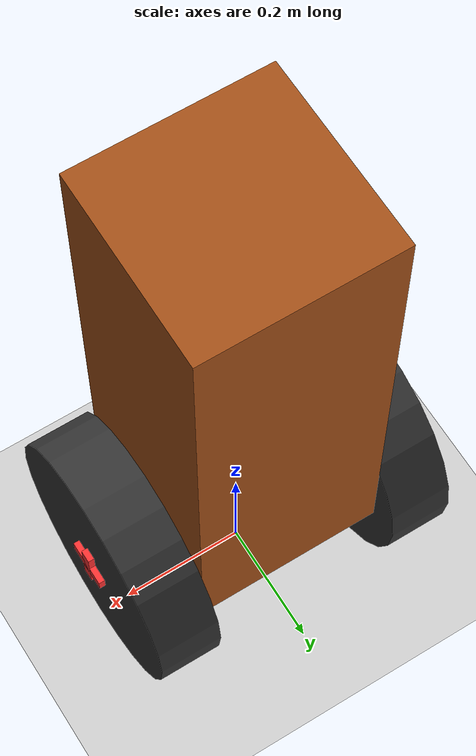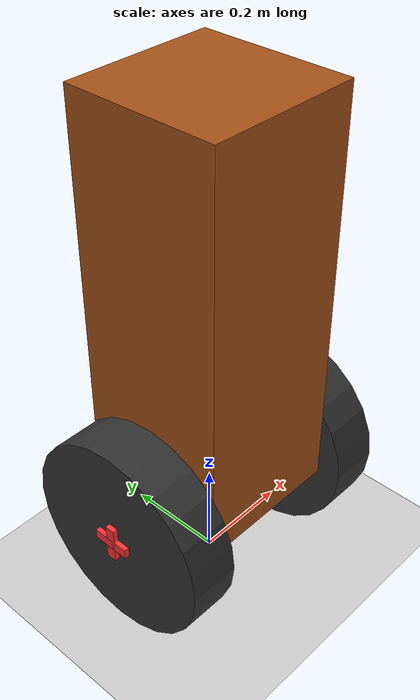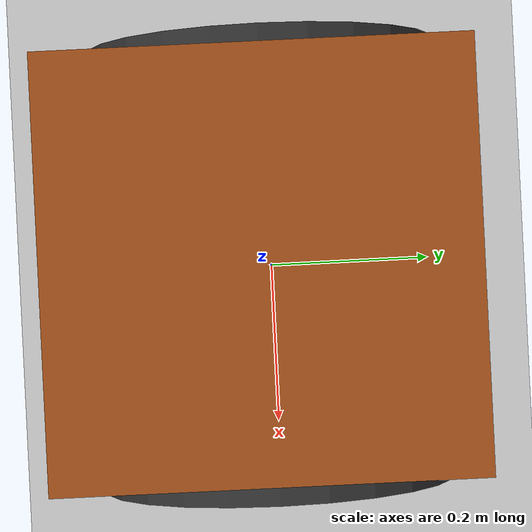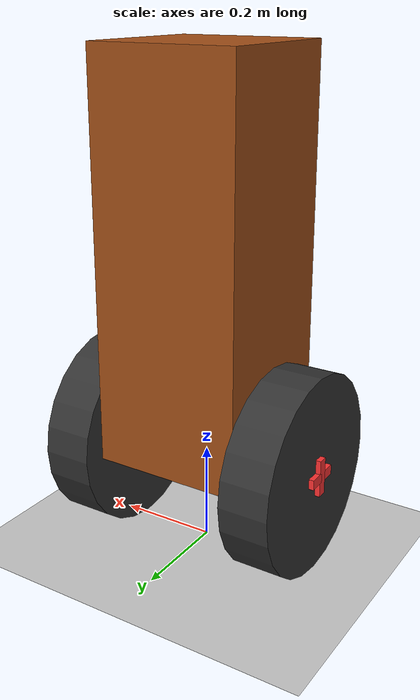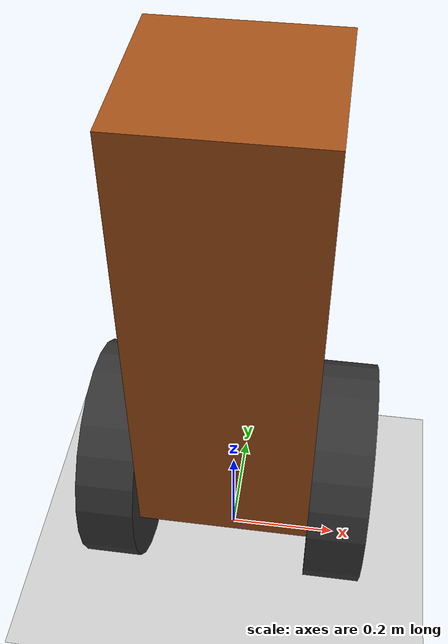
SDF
<?xml version="1.0"?>
<sdf version='1.9'>
  <world name='empty'>
    <physics name='1ms' type='ignored'>
      <max_step_size>0.001</max_step_size>
      <real_time_factor>1</real_time_factor>
      <real_time_update_rate>1000</real_time_update_rate>
    </physics>
    <plugin name='gz::sim::systems::Physics' filename='gz-sim-physics-system'/>
    <plugin name='gz::sim::systems::UserCommands' filename='gz-sim-user-commands-system'/>
    <plugin name='gz::sim::systems::SceneBroadcaster' filename='gz-sim-scene-broadcaster-system'/>
    <plugin name='gz::sim::systems::Contact' filename='gz-sim-contact-system'/>
    <plugin filename="gz-sim-imu-system" name="gz::sim::systems::Imu" />
    <gravity>0 0 -9.8</gravity>
    <magnetic_field>6e-06 2.3e-05 -4.2e-05</magnetic_field>
    <atmosphere type='adiabatic'/>
    <scene>
      <ambient>0.400000006 0.400000006 0.400000006 1</ambient>
      <background>0.699999988 0.699999988 0.699999988 1</background>
      <sky></sky>
      <shadows>false</shadows>
    </scene>
    <model name='ground_plane'>
      <static>true</static>
      <link name='link'>
        <collision name='collision'>
          <geometry>
            <plane>
              <normal>0 0 1</normal>
              <size>1000 1000</size>
            </plane>
          </geometry>
          <surface>
            <friction>
              <ode/>
            </friction>
            <bounce/>
            <contact/>
          </surface>
        </collision>
        <visual name='visual'>
          <geometry>
            <plane>
              <normal>0 0 1</normal>
              <size>1000 1000</size>
            </plane>
          </geometry>
          <material>
            <ambient>0.8 0.8 0.8 1</ambient>
            <diffuse>0.8 0.8 0.8 1</diffuse>
            <specular>0.8 0.8 0.8 1</specular>
          </material>
        </visual>
        <pose>0 0 0 0 -0 0</pose>
        <inertial>
          <pose>0 0 0 0 -0 0</pose>
          <mass>1</mass>
          <inertia>
            <ixx>1</ixx>
            <ixy>0</ixy>
            <ixz>0</ixz>
            <iyy>1</iyy>
            <iyz>0</iyz>
            <izz>1</izz>
          </inertia>
        </inertial>
        <enable_wind>false</enable_wind>
      </link>
      <pose>0 0 0 0 -0 0</pose>
      <self_collide>false</self_collide>
    </model>
    <light name='sun' type='directional'>
      <pose>0 0 10 0 -0 0</pose>
      <cast_shadows>true</cast_shadows>
      <intensity>1</intensity>
      <direction>-0.5 0.1 -0.9</direction>
      <diffuse>0.8 0.8 0.8 1</diffuse>
      <specular>0.2 0.2 0.2 1</specular>
      <attenuation>
        <range>1000</range>
        <linear>0.01</linear>
        <constant>0.90000000000000002</constant>
        <quadratic>0.001</quadratic>
      </attenuation>
      <spot>
        <inner_angle>0</inner_angle>
        <outer_angle>0</outer_angle>
        <falloff>0</falloff>
      </spot>
    </light>

    <model name="teeterbot_training_wheels">
      <self_collide>true</self_collide>
      <pose>0 0 0 0 0 1.5707</pose>
      <include merge="true">
        <uri>package://teeterbot_description/models/teeterbot_training_wheels</uri>
      </include>
    </model>
  </world>
</sdf>

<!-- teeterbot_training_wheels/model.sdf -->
<sdf version="1.9">
    <model name='teeterbot_training_wheels'>
        <link name="body_com">
            <sensor name="imu_sensor" type="imu">
                <always_on>1</always_on>
                <update_rate>100</update_rate>
                <visualize>false</visualize>
                <topic>imu</topic>
            </sensor>
            <pose>0 0 0.6 0 0 0</pose>

            <visual name="visual_body">
                <geometry>
                    <box>
                        <size>0.3 0.3 0.8</size>
                    </box>
                </geometry>
                <material>
                    <ambient>0.64 0.314 0.095 1</ambient>
                    <diffuse>0.64 0.314 0.095 1</diffuse>
                    <specular>0.64 0.314 0.095 1</specular>
                </material>
            </visual>

            <collision name="collision_body">
                <geometry>
                    <box>
                        <size>0.3 0.3 0.8</size>
                    </box>
                </geometry>
            </collision>

            <collision name="rear_training_wheel">
                <pose>-1.0 0.0 -0.535 0 0 0</pose>
                <geometry>
                    <sphere>
                        <radius>0.05</radius>
                    </sphere>
                </geometry>
                <surface>
                    <friction>
                        <ode>
                        <mu>0</mu>
                        <mu2>0</mu2>
                        <slip1>1.0</slip1>
                        <slip2>1.0</slip2>
                        </ode>
                    </friction>
                </surface>
            </collision>

            <collision name="front_training_wheel">
                <pose>1.0 0.0 -0.535 0 0 0</pose>
                <geometry>
                    <sphere>
                        <radius>0.05</radius>
                    </sphere>
                </geometry>
                <surface>
                    <friction>
                        <ode>
                        <mu>0</mu>
                        <mu2>0</mu2>
                        <slip1>1.0</slip1>
                        <slip2>1.0</slip2>
                        </ode>
                    </friction>
                </surface>
            </collision>

            <inertial>
                <mass>10.0</mass>
                <inertia>
                    <ixx>0.6083</ixx>
                    <ixy>0</ixy>
                    <ixz>0</ixz>
                    <iyy>0.6083</iyy>
                    <iyz>0</iyz>
                    <izz>0.15</izz>
                </inertia>
            </inertial>
        </link>

        <link name="left_wheel">
            <pose>0 0.2 0.21 -1.5707963267948966 0 0</pose>
            <visual name="visual_left_wheel">
                <geometry>
                    <cylinder>
                        <radius>0.2</radius>
                        <length>0.1</length>
                    </cylinder>
                </geometry>
                <material>
                    <ambient>0.2 0.2 0.2 1</ambient>
                    <diffuse>0.2 0.2 0.2 1</diffuse>
                    <specular>0.2 0.2 0.2 1</specular>
                </material>
            </visual>
            <visual name="visual_left_hub1">
                <geometry>
                    <box>
                        <size>0.02 0.075 0.12</size>
                    </box>
                </geometry>
                <material>
                    <ambient>1.0 0.2 0.2 1</ambient>
                    <diffuse>1.0 0.2 0.2 1</diffuse>
                    <specular>1.0 0.2 0.2 1</specular>
                </material>
            </visual>
            <visual name="visual_left_hub2">
                <geometry>
                    <box>
                        <size>0.075 0.02 0.12</size>
                    </box>
                </geometry>

                <material>
                    <ambient>1.0 0.2 0.2 1</ambient>
                    <diffuse>1.0 0.2 0.2 1</diffuse>
                    <specular>1.0 0.2 0.2 1</specular>
                </material>
            </visual>

            <collision name="collision_left_wheel">
                <geometry>
                    <cylinder>
                        <radius>0.2</radius>
                        <length>0.1</length>
                    </cylinder>
                </geometry>
            </collision>

            <inertial>
                <mass>1.0</mass>
                <inertia>
                    <ixx>0.01</ixx>
                    <ixy>0</ixy>
                    <ixz>0</ixz>
                    <iyy>0.01</iyy>
                    <iyz>0</iyz>
                    <izz>0.02</izz>
                </inertia>
            </inertial>
        </link>

        <link name="right_wheel">
            <pose>0 -0.2 0.21 -1.5707963267948966 0 0</pose>
            <visual name="visual_right_wheel">
                <geometry>
                    <cylinder>
                        <radius>0.2</radius>
                        <length>0.1</length>
                    </cylinder>
                </geometry>
                <material>
                    <ambient>0.2 0.2 0.2 1</ambient>
                    <diffuse>0.2 0.2 0.2 1</diffuse>
                    <specular>0.2 0.2 0.2 1</specular>
                </material>
            </visual>
            <visual name="visual_right_hub1">
                <geometry>
                    <box>
                        <size>0.02 0.075 0.12</size>
                    </box>
                </geometry>
                <material>
                    <ambient>1.0 0.2 0.2 1</ambient>
                    <diffuse>1.0 0.2 0.2 1</diffuse>
                    <specular>1.0 0.2 0.2 1</specular>
                </material>
            </visual>
            <visual name="visual_right_hub2">
                <geometry>
                    <box>
                        <size>0.075 0.02 0.12</size>
                    </box>
                </geometry>

                <material>
                    <ambient>1.0 0.2 0.2 1</ambient>
                    <diffuse>1.0 0.2 0.2 1</diffuse>
                    <specular>1.0 0.2 0.2 1</specular>
                </material>
            </visual>

            <collision name="collision_right_wheel">
                <geometry>
                    <cylinder>
                        <radius>0.2</radius>
                        <length>0.1</length>
                    </cylinder>
                </geometry>
            </collision>

            <inertial>
                <mass>1.0</mass>
                <inertia>
                    <ixx>0.01</ixx>
                    <ixy>0</ixy>
                    <ixz>0</ixz>
                    <iyy>0.01</iyy>
                    <iyz>0</iyz>
                    <izz>0.02</izz>
                </inertia>
            </inertial>
        </link>

        <joint name="left_wheel_joint" type="revolute">
            <parent>body_com</parent>
            <child>left_wheel</child>
            <axis>
                <xyz>0 0 1</xyz>
                <limit>
                    <lower>-1.79769e+308</lower>
                    <upper>1.79769e+308</upper>
                </limit>
                <dynamics>
                    <damping>0.1</damping>
                    <spring_reference>0.0</spring_reference>
                    <spring_stiffness>0.0</spring_stiffness>
                </dynamics>
            </axis>
        </joint>

        <joint name="right_wheel_joint" type="revolute">
            <parent>body_com</parent>
            <child>right_wheel</child>
            <axis>
                <xyz>0 0 1</xyz>
                <limit>
                    <lower>-1.79769e+308</lower>
                    <upper>1.79769e+308</upper>
                </limit>
                <dynamics>
                    <damping>0.1</damping>
                    <spring_reference>0.0</spring_reference>
                    <spring_stiffness>0.0</spring_stiffness>
                </dynamics>
            </axis>
        </joint>

        <plugin filename="TeeterbotInterfacePlugin" name="teeterbot_gazebo::TeeterbotInterfacePlugin"/>
    </model>
</sdf>
